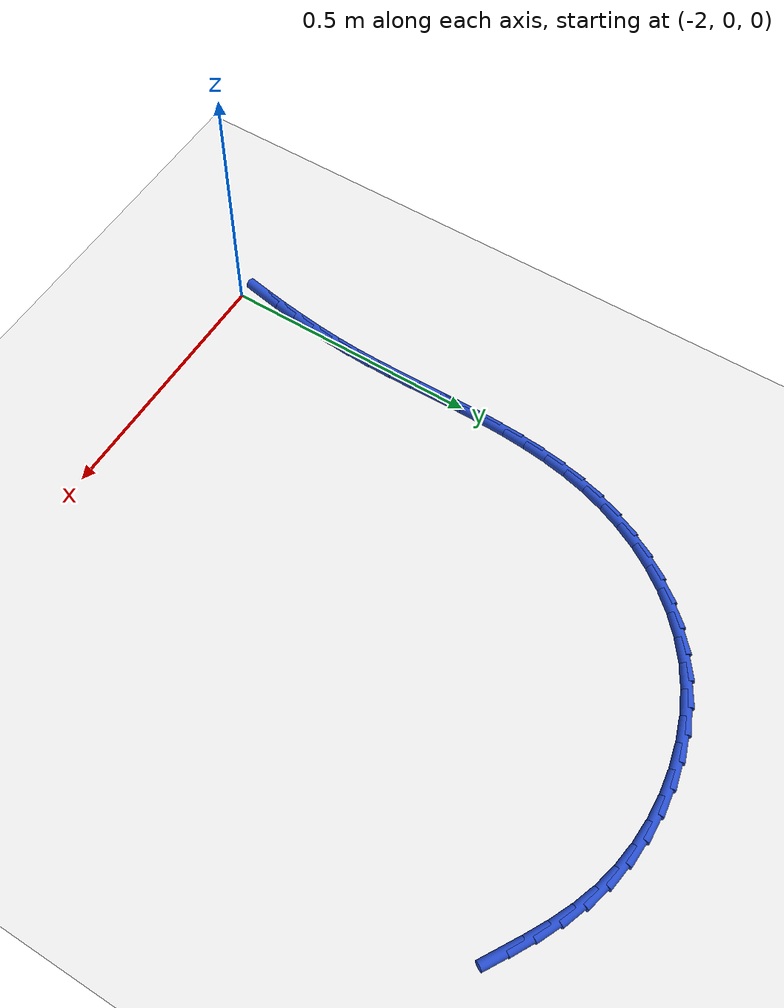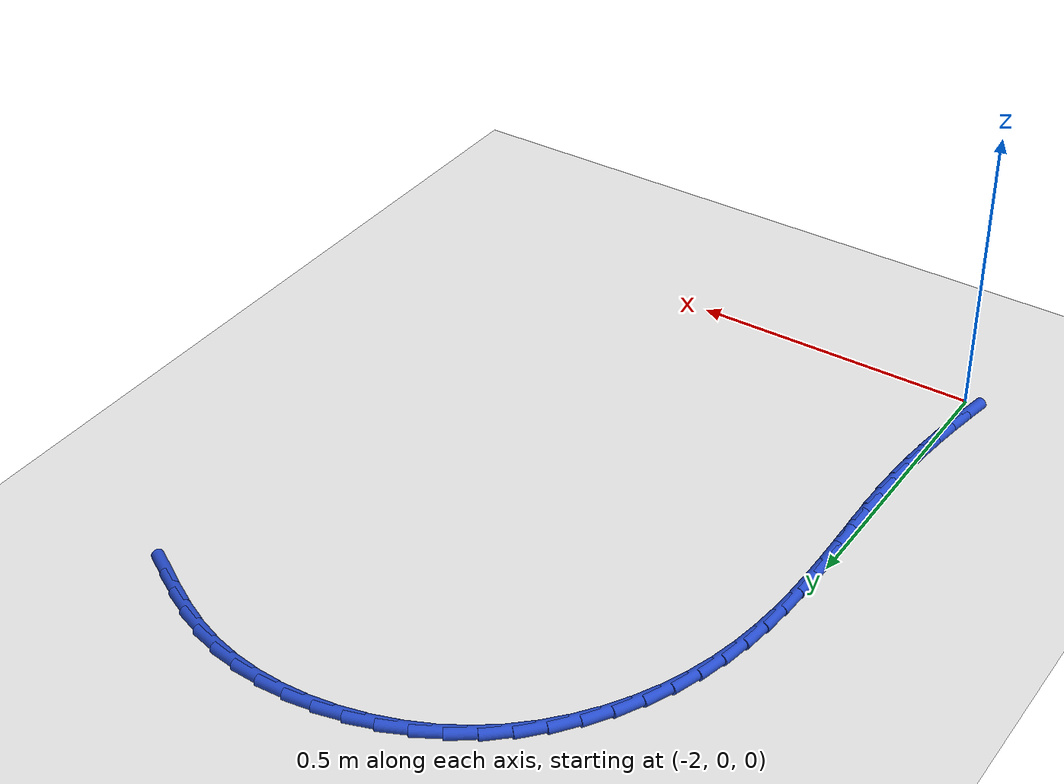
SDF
<sdf version="1.6">
 <world name="default">
  <model name="ground_plane">
   <static>1</static>
   <link name="link">
    <collision name="collision">
     <geometry><plane><normal>0 0 1</normal><size>100 100</size></plane></geometry>
     <surface><friction><ode><mu>100</mu><mu2>50</mu2></ode></friction></surface>
    </collision>
    <visual name="visual">
     <cast_shadows>0</cast_shadows>
     <geometry><plane><normal>0 0 1</normal><size>100 100</size></plane></geometry>
     <material>
      <script><uri>file://media/materials/scripts/gazebo.material</uri><name>Gazebo/WhiteGlow</name></script>
     </material>
    </visual>
   </link>
  </model>
  <model name="line">
   <link name="link_37">
    <pose>-1.176665803420045 1.052955116632838 0.01 0 1.57 -0.525424141886662</pose>
    <collision name="collision">
     <geometry><cylinder><radius>0.01</radius><length>0.08</length></cylinder></geometry>
    </collision>
    <visual name="visual">
     <material>
      <script><name>Gazebo/Blue</name><uri>file://media/materials/scripts/gazebo.material</uri></script>
     </material>
     <geometry><cylinder><radius>0.01</radius><length>0.08</length></cylinder></geometry>
    </visual>
   </link>
   <link name="link_38">
    <pose>-1.2167669833444787 1.076205245854128 0.01 0 1.57 -0.4895350120014604</pose>
    <collision name="collision">
     <geometry><cylinder><radius>0.01</radius><length>0.08</length></cylinder></geometry>
    </collision>
    <visual name="visual">
     <material>
      <script><name>Gazebo/Blue</name><uri>file://media/materials/scripts/gazebo.material</uri></script>
     </material>
     <geometry><cylinder><radius>0.01</radius><length>0.08</length></cylinder></geometry>
    </visual>
   </link>
   <link name="link_39">
    <pose>-1.2575984004137213 1.0979598580495549 0.01 0 1.57 -0.4277782058086873</pose>
    <collision name="collision">
     <geometry><cylinder><radius>0.01</radius><length>0.08</length></cylinder></geometry>
    </collision>
    <visual name="visual">
     <material>
      <script><name>Gazebo/Blue</name><uri>file://media/materials/scripts/gazebo.material</uri></script>
     </material>
     <geometry><cylinder><radius>0.01</radius><length>0.08</length></cylinder></geometry>
    </visual>
   </link>
   <link name="link_40">
    <pose>-1.2996226181962505 1.1171201548661513 0.01 0 1.57 -0.34037503169275535</pose>
    <collision name="collision">
     <geometry><cylinder><radius>0.01</radius><length>0.08</length></cylinder></geometry>
    </collision>
    <visual name="visual">
     <material>
      <script><name>Gazebo/Blue</name><uri>file://media/materials/scripts/gazebo.material</uri></script>
     </material>
     <geometry><cylinder><radius>0.01</radius><length>0.08</length></cylinder></geometry>
    </visual>
   </link>
   <link name="link_41">
    <pose>-1.3433006260002136 1.1325891097746126 0.01 0 1.57 -0.23743847597893408</pose>
    <collision name="collision">
     <geometry><cylinder><radius>0.01</radius><length>0.08</length></cylinder></geometry>
    </collision>
    <visual name="visual">
     <material>
      <script><name>Gazebo/Blue</name><uri>file://media/materials/scripts/gazebo.material</uri></script>
     </material>
     <geometry><cylinder><radius>0.01</radius><length>0.08</length></cylinder></geometry>
    </visual>
   </link>
   <link name="link_42">
    <pose>-1.3887998648804614 1.1436000836223037 0.01 0 1.57 -0.13790647263707143</pose>
    <collision name="collision">
     <geometry><cylinder><radius>0.01</radius><length>0.08</length></cylinder></geometry>
    </collision>
    <visual name="visual">
     <material>
      <script><name>Gazebo/Blue</name><uri>file://media/materials/scripts/gazebo.material</uri></script>
     </material>
     <geometry><cylinder><radius>0.01</radius><length>0.08</length></cylinder></geometry>
    </visual>
   </link>
   <link name="link_43">
    <pose>-1.4356515491007282 1.150102507947271 0.01 0 1.57 -0.0427215888527072</pose>
    <collision name="collision">
     <geometry><cylinder><radius>0.01</radius><length>0.08</length></cylinder></geometry>
    </collision>
    <visual name="visual">
     <material>
      <script><name>Gazebo/Blue</name><uri>file://media/materials/scripts/gazebo.material</uri></script>
     </material>
     <geometry><cylinder><radius>0.01</radius><length>0.08</length></cylinder></geometry>
    </visual>
   </link>
   <link name="link_44">
    <pose>-1.4833036354734572 1.1521395202136293 0.01 0 1.57 0.049755147119950674</pose>
    <collision name="collision">
     <geometry><cylinder><radius>0.01</radius><length>0.08</length></cylinder></geometry>
    </collision>
    <visual name="visual">
     <material>
      <script><name>Gazebo/Blue</name><uri>file://media/materials/scripts/gazebo.material</uri></script>
     </material>
     <geometry><cylinder><radius>0.01</radius><length>0.08</length></cylinder></geometry>
    </visual>
   </link>
   <link name="link_45">
    <pose>-1.5312040808110914 1.1497542578854933 0.01 0 1.57 0.14117350452861044</pose>
    <collision name="collision">
     <geometry><cylinder><radius>0.01</radius><length>0.08</length></cylinder></geometry>
    </collision>
    <visual name="visual">
     <material>
      <script><name>Gazebo/Blue</name><uri>file://media/materials/scripts/gazebo.material</uri></script>
     </material>
     <geometry><cylinder><radius>0.01</radius><length>0.08</length></cylinder></geometry>
    </visual>
   </link>
   <link name="link_46">
    <pose>-1.5788008419260717 1.1429898584269773 0.01 0 1.57 0.2331677226443067</pose>
    <collision name="collision">
     <geometry><cylinder><radius>0.01</radius><length>0.08</length></cylinder></geometry>
    </collision>
    <visual name="visual">
     <material>
      <script><name>Gazebo/Blue</name><uri>file://media/materials/scripts/gazebo.material</uri></script>
     </material>
     <geometry><cylinder><radius>0.01</radius><length>0.08</length></cylinder></geometry>
    </visual>
   </link>
   <link name="link_47">
    <pose>-1.6255418756308413 1.131889459302196 0.01 0 1.57 0.32734203992440386</pose>
    <collision name="collision">
     <geometry><cylinder><radius>0.01</radius><length>0.08</length></cylinder></geometry>
    </collision>
    <visual name="visual">
     <material>
      <script><name>Gazebo/Blue</name><uri>file://media/materials/scripts/gazebo.material</uri></script>
     </material>
     <geometry><cylinder><radius>0.01</radius><length>0.08</length></cylinder></geometry>
    </visual>
   </link>
   <link name="link_48">
    <pose>-1.6708751387378422 1.1164961979752634 0.01 0 1.57 0.42524670431014155</pose>
    <collision name="collision">
     <geometry><cylinder><radius>0.01</radius><length>0.08</length></cylinder></geometry>
    </collision>
    <visual name="visual">
     <material>
      <script><name>Gazebo/Blue</name><uri>file://media/materials/scripts/gazebo.material</uri></script>
     </material>
     <geometry><cylinder><radius>0.01</radius><length>0.08</length></cylinder></geometry>
    </visual>
   </link>
   <link name="link_49">
    <pose>-1.7142485880595175 1.096853211910295 0.01 0 1.57 0.5283235539777915</pose>
    <collision name="collision">
     <geometry><cylinder><radius>0.01</radius><length>0.08</length></cylinder></geometry>
    </collision>
    <visual name="visual">
     <material>
      <script><name>Gazebo/Blue</name><uri>file://media/materials/scripts/gazebo.material</uri></script>
     </material>
     <geometry><cylinder><radius>0.01</radius><length>0.08</length></cylinder></geometry>
    </visual>
   </link>
   <link name="link_50">
    <pose>-1.7551101804083091 1.0730036385714044 0.01 0 1.57 0.6357839634131698</pose>
    <collision name="collision">
     <geometry><cylinder><radius>0.01</radius><length>0.08</length></cylinder></geometry>
    </collision>
    <visual name="visual">
     <material>
      <script><name>Gazebo/Blue</name><uri>file://media/materials/scripts/gazebo.material</uri></script>
     </material>
     <geometry><cylinder><radius>0.01</radius><length>0.08</length></cylinder></geometry>
    </visual>
   </link>
   <link name="link_51">
    <pose>-1.7929816792724023 1.0450540515688203 0.01 0 1.57 0.7393848744995453</pose>
    <collision name="collision">
     <geometry><cylinder><radius>0.01</radius><length>0.08</length></cylinder></geometry>
    </collision>
    <visual name="visual">
     <material>
      <script><name>Gazebo/Blue</name><uri>file://media/materials/scripts/gazebo.material</uri></script>
     </material>
     <geometry><cylinder><radius>0.01</radius><length>0.08</length></cylinder></geometry>
    </visual>
   </link>
   <link name="link_52">
    <pose>-1.827705848960537 1.0133869217097409 0.01 0 1.57 0.8368378226469672</pose>
    <collision name="collision">
     <geometry><cylinder><radius>0.01</radius><length>0.08</length></cylinder></geometry>
    </collision>
    <visual name="visual">
     <material>
      <script><name>Gazebo/Blue</name><uri>file://media/materials/scripts/gazebo.material</uri></script>
     </material>
     <geometry><cylinder><radius>0.01</radius><length>0.08</length></cylinder></geometry>
    </visual>
   </link>
   <link name="link_53">
    <pose>-1.8592127002818553 0.9784597073508211 0.01 0 1.57 0.9286167964909425</pose>
    <collision name="collision">
     <geometry><cylinder><radius>0.01</radius><length>0.08</length></cylinder></geometry>
    </collision>
    <visual name="visual">
     <material>
      <script><name>Gazebo/Blue</name><uri>file://media/materials/scripts/gazebo.material</uri></script>
     </material>
     <geometry><cylinder><radius>0.01</radius><length>0.08</length></cylinder></geometry>
    </visual>
   </link>
   <link name="link_54">
    <pose>-1.8874322457880004 0.9407298683463771 0.01 0 1.57 1.015516764488374</pose>
    <collision name="collision">
     <geometry><cylinder><radius>0.01</radius><length>0.08</length></cylinder></geometry>
    </collision>
    <visual name="visual">
     <material>
      <script><name>Gazebo/Blue</name><uri>file://media/materials/scripts/gazebo.material</uri></script>
     </material>
     <geometry><cylinder><radius>0.01</radius><length>0.08</length></cylinder></geometry>
    </visual>
   </link>
   <link name="link_55">
    <pose>-1.9122944980306156 0.9006548645507276 0.01 0 1.57 1.098538158207671</pose>
    <collision name="collision">
     <geometry><cylinder><radius>0.01</radius><length>0.08</length></cylinder></geometry>
    </collision>
    <visual name="visual">
     <material>
      <script><name>Gazebo/Blue</name><uri>file://media/materials/scripts/gazebo.material</uri></script>
     </material>
     <geometry><cylinder><radius>0.01</radius><length>0.08</length></cylinder></geometry>
    </visual>
   </link>
   <link name="link_56">
    <pose>-1.9337294695613434 0.858692155818189 0.01 0 1.57 1.1788104381272797</pose>
    <collision name="collision">
     <geometry><cylinder><radius>0.01</radius><length>0.08</length></cylinder></geometry>
    </collision>
    <visual name="visual">
     <material>
      <script><name>Gazebo/Blue</name><uri>file://media/materials/scripts/gazebo.material</uri></script>
     </material>
     <geometry><cylinder><radius>0.01</radius><length>0.08</length></cylinder></geometry>
    </visual>
   </link>
   <link name="link_57">
    <pose>-1.951667172931827 0.815299202003079 0.01 0 1.57 1.2575298625116862</pose>
    <collision name="collision">
     <geometry><cylinder><radius>0.01</radius><length>0.08</length></cylinder></geometry>
    </collision>
    <visual name="visual">
     <material>
      <script><name>Gazebo/Blue</name><uri>file://media/materials/scripts/gazebo.material</uri></script>
     </material>
     <geometry><cylinder><radius>0.01</radius><length>0.08</length></cylinder></geometry>
    </visual>
   </link>
   <link name="link_58">
    <pose>-1.9660389996991319 0.7709325272063688 0.01 0 1.57 1.3330420297755883</pose>
    <collision name="collision">
     <geometry><cylinder><radius>0.01</radius><length>0.08</length></cylinder></geometry>
    </collision>
    <visual name="visual">
     <material>
      <script><name>Gazebo/Blue</name><uri>file://media/materials/scripts/gazebo.material</uri></script>
     </material>
     <geometry><cylinder><radius>0.01</radius><length>0.08</length></cylinder></geometry>
    </visual>
   </link>
   <link name="link_59">
    <pose>-1.9769435565901758 0.7259351881329419 0.01 0 1.57 1.399739414902737</pose>
    <collision name="collision">
     <geometry><cylinder><radius>0.01</radius><length>0.08</length></cylinder></geometry>
    </collision>
    <visual name="visual">
     <material>
      <script><name>Gazebo/Blue</name><uri>file://media/materials/scripts/gazebo.material</uri></script>
     </material>
     <geometry><cylinder><radius>0.01</radius><length>0.08</length></cylinder></geometry>
    </visual>
   </link>
   <link name="link_60">
    <pose>-1.9848043984560055 0.6804297410537653 0.01 0 1.57 1.4563495433846998</pose>
    <collision name="collision">
     <geometry><cylinder><radius>0.01</radius><length>0.08</length></cylinder></geometry>
    </collision>
    <visual name="visual">
     <material>
      <script><name>Gazebo/Blue</name><uri>file://media/materials/scripts/gazebo.material</uri></script>
     </material>
     <geometry><cylinder><radius>0.01</radius><length>0.08</length></cylinder></geometry>
    </visual>
   </link>
   <link name="link_61">
    <pose>-1.990082441337623 0.6345133900128358 0.01 0 1.57 1.5026313555036652</pose>
    <collision name="collision">
     <geometry><cylinder><radius>0.01</radius><length>0.08</length></cylinder></geometry>
    </collision>
    <visual name="visual">
     <material>
      <script><name>Gazebo/Blue</name><uri>file://media/materials/scripts/gazebo.material</uri></script>
     </material>
     <geometry><cylinder><radius>0.01</radius><length>0.08</length></cylinder></geometry>
    </visual>
   </link>
   <link name="link_62">
    <pose>-1.9932386012760326 0.5882833390541492 0.01 0 1.57 1.5386157457409615</pose>
    <collision name="collision">
     <geometry><cylinder><radius>0.01</radius><length>0.08</length></cylinder></geometry>
    </collision>
    <visual name="visual">
     <material>
      <script><name>Gazebo/Blue</name><uri>file://media/materials/scripts/gazebo.material</uri></script>
     </material>
     <geometry><cylinder><radius>0.01</radius><length>0.08</length></cylinder></geometry>
    </visual>
   </link>
   <link name="link_63">
    <pose>-1.9947337943122376 0.5418367922217022 0.01 0 1.57 1.5644582422378988</pose>
    <collision name="collision">
     <geometry><cylinder><radius>0.01</radius><length>0.08</length></cylinder></geometry>
    </collision>
    <visual name="visual">
     <material>
      <script><name>Gazebo/Blue</name><uri>file://media/materials/scripts/gazebo.material</uri></script>
     </material>
     <geometry><cylinder><radius>0.01</radius><length>0.08</length></cylinder></geometry>
    </visual>
   </link>
   <link name="link_64">
    <pose>-1.99502893648724 0.495270953559491 0.01 0 1.57 -1.5612664069654179</pose>
    <collision name="collision">
     <geometry><cylinder><radius>0.01</radius><length>0.08</length></cylinder></geometry>
    </collision>
    <visual name="visual">
     <material>
      <script><name>Gazebo/Blue</name><uri>file://media/materials/scripts/gazebo.material</uri></script>
     </material>
     <geometry><cylinder><radius>0.01</radius><length>0.08</length></cylinder></geometry>
    </visual>
   </link>
   <link name="link_65">
    <pose>-1.9945849438420433 0.44868302711151153 0.01 0 1.57 -1.5552704235019725</pose>
    <collision name="collision">
     <geometry><cylinder><radius>0.01</radius><length>0.08</length></cylinder></geometry>
    </collision>
    <visual name="visual">
     <material>
      <script><name>Gazebo/Blue</name><uri>file://media/materials/scripts/gazebo.material</uri></script>
     </material>
     <geometry><cylinder><radius>0.01</radius><length>0.08</length></cylinder></geometry>
    </visual>
   </link>
   <link name="link_66">
    <pose>-1.9938627324176503 0.4021702169217602 0.01 0 1.57 -1.5591544604772611</pose>
    <collision name="collision">
     <geometry><cylinder><radius>0.01</radius><length>0.08</length></cylinder></geometry>
    </collision>
    <visual name="visual">
     <material>
      <script><name>Gazebo/Blue</name><uri>file://media/materials/scripts/gazebo.material</uri></script>
     </material>
     <geometry><cylinder><radius>0.01</radius><length>0.08</length></cylinder></geometry>
    </visual>
   </link>
   <link name="link_67">
    <pose>-1.9933232182550655 0.3558297270342329 0.01 0 1.57 1.5685367917093591</pose>
    <collision name="collision">
     <geometry><cylinder><radius>0.01</radius><length>0.08</length></cylinder></geometry>
    </collision>
    <visual name="visual">
     <material>
      <script><name>Gazebo/Blue</name><uri>file://media/materials/scripts/gazebo.material</uri></script>
     </material>
     <geometry><cylinder><radius>0.01</radius><length>0.08</length></cylinder></geometry>
    </visual>
   </link>
   <link name="link_68">
    <pose>-1.99342731739529 0.30975876149292647 0.01 0 1.57 1.5443579276386854</pose>
    <collision name="collision">
     <geometry><cylinder><radius>0.01</radius><length>0.08</length></cylinder></geometry>
    </collision>
    <visual name="visual">
     <material>
      <script><name>Gazebo/Blue</name><uri>file://media/materials/scripts/gazebo.material</uri></script>
     </material>
     <geometry><cylinder><radius>0.01</radius><length>0.08</length></cylinder></geometry>
    </visual>
   </link>
   <link name="link_69">
    <pose>-1.9946359458793292 0.26405452434183685 0.01 0 1.57 1.5112020425151593</pose>
    <collision name="collision">
     <geometry><cylinder><radius>0.01</radius><length>0.08</length></cylinder></geometry>
    </collision>
    <visual name="visual">
     <material>
      <script><name>Gazebo/Blue</name><uri>file://media/materials/scripts/gazebo.material</uri></script>
     </material>
     <geometry><cylinder><radius>0.01</radius><length>0.08</length></cylinder></geometry>
    </visual>
   </link>
   <link name="link_70">
    <pose>-1.9973365516080612 0.21879166136424308 0.01 0 1.57 1.4784598613704998</pose>
    <collision name="collision">
     <geometry><cylinder><radius>0.01</radius><length>0.08</length></cylinder></geometry>
    </collision>
    <visual name="visual">
     <material>
      <script><name>Gazebo/Blue</name><uri>file://media/materials/scripts/gazebo.material</uri></script>
     </material>
     <geometry><cylinder><radius>0.01</radius><length>0.08</length></cylinder></geometry>
    </visual>
   </link>
   <link name="link_71">
    <pose>-2.0014921668640357 0.17391450228867214 0.01 0 1.57 1.4498128613974492</pose>
    <collision name="collision">
     <geometry><cylinder><radius>0.01</radius><length>0.08</length></cylinder></geometry>
    </collision>
    <visual name="visual">
     <material>
      <script><name>Gazebo/Blue</name><uri>file://media/materials/scripts/gazebo.material</uri></script>
     </material>
     <geometry><cylinder><radius>0.01</radius><length>0.08</length></cylinder></geometry>
    </visual>
   </link>
   <link name="link_72">
    <pose>-2.0069137591343513 0.1293206856208188 0.01 0 1.57 1.4255106887678506</pose>
    <collision name="collision">
     <geometry><cylinder><radius>0.01</radius><length>0.08</length></cylinder></geometry>
    </collision>
    <visual name="visual">
     <material>
      <script><name>Gazebo/Blue</name><uri>file://media/materials/scripts/gazebo.material</uri></script>
     </material>
     <geometry><cylinder><radius>0.01</radius><length>0.08</length></cylinder></geometry>
    </visual>
   </link>
   <link name="link_73">
    <pose>-2.013412101607723 0.08490779020740581 0.01 0 1.57 1.4057178785920594</pose>
    <collision name="collision">
     <geometry><cylinder><radius>0.01</radius><length>0.08</length></cylinder></geometry>
    </collision>
    <visual name="visual">
     <material>
      <script><name>Gazebo/Blue</name><uri>file://media/materials/scripts/gazebo.material</uri></script>
     </material>
     <geometry><cylinder><radius>0.01</radius><length>0.08</length></cylinder></geometry>
    </visual>
   </link>
   <link name="link_74">
    <pose>-2.020797967472865 0.0405733948951564 0.01 0 1.57 1.3905279289799297</pose>
    <collision name="collision">
     <geometry><cylinder><radius>0.01</radius><length>0.08</length></cylinder></geometry>
    </collision>
    <visual name="visual">
     <material>
      <script><name>Gazebo/Blue</name><uri>file://media/materials/scripts/gazebo.material</uri></script>
     </material>
     <geometry><cylinder><radius>0.01</radius><length>0.08</length></cylinder></geometry>
    </visual>
   </link>
  </model>
 </world>
</sdf>
